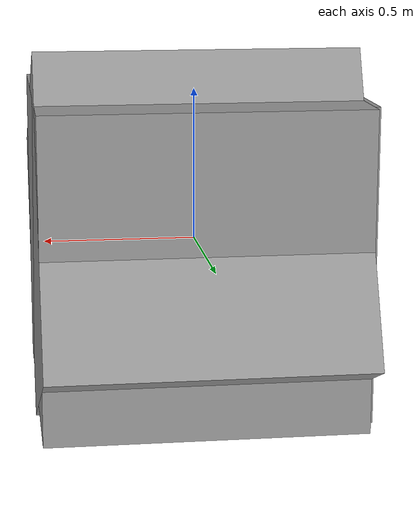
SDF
<sdf version='1.4'>
  <model name='test_converter'>
    <link name='link_slot1'>
      <pose>0 0 0 0 -0 0</pose>
      <inertial>
        <pose>0 0 0 0 -0 0</pose>
        <mass>5</mass>
        <inertia>
          <ixx>1</ixx>
          <ixy>0</ixy>
          <ixz>0</ixz>
          <iyy>1</iyy>
          <iyz>0</iyz>
          <izz>1</izz>
        </inertia>
      </inertial>
      <collision name='link_slot1_collision'>
        <pose>0 0 0 0 -0 0</pose>
        <geometry>
          <box>
            <size>1 1 1</size>
          </box>
        </geometry>
        <surface>
          <contact>
            <ode/>
          </contact>
          <friction>
            <ode/>
          </friction>
        </surface>
      </collision>
      <visual name='link_slot1_visual'>
        <pose>0 0 0 0 -0 0</pose>
        <geometry>
          <box>
            <size>1 1 1</size>
          </box>
        </geometry>
        <material>
          <script>
            <name>Gazebo/Grey</name>
            <uri>__default__</uri>
          </script>
        </material>
      </visual>
      <gravity>1</gravity>
      <velocity_decay>
        <linear>0</linear>
        <angular>0</angular>
      </velocity_decay>
      <self_collide>0</self_collide>
    </link>
    <link name='link_slot1_switch'>
      <pose>0.037 0.111 0.005 0.419 -0 0</pose>
      <inertial>
        <pose>0 0 0 0 -0 0</pose>
        <mass>5</mass>
        <inertia>
          <ixx>1</ixx>
          <ixy>0</ixy>
          <ixz>0</ixz>
          <iyy>1</iyy>
          <iyz>0</iyz>
          <izz>1</izz>
        </inertia>
      </inertial>
      <collision name='link_slot1_switch_collision'>
        <pose>0 0 0 0 -0 0</pose>
        <geometry>
          <box>
            <size>1 1 1</size>
          </box>
        </geometry>
        <surface>
          <contact>
            <ode/>
          </contact>
          <friction>
            <ode/>
          </friction>
        </surface>
      </collision>
      <visual name='link_slot1_switch_visual'>
        <pose>0 0 0 0 -0 0</pose>
        <geometry>
          <box>
            <size>1 1 1</size>
          </box>
        </geometry>
        <material>
          <script>
            <name>Gazebo/Grey</name>
            <uri>__default__</uri>
          </script>
        </material>
        <material>
          <script>
            <name>Gazebo/Black</name>
            <uri>__default__</uri>
          </script>
        </material>
      </visual>
      <gravity>1</gravity>
      <velocity_decay>
        <linear>0</linear>
        <angular>0</angular>
      </velocity_decay>
      <self_collide>0</self_collide>
    </link>
    <joint name='link_slot1/link_slot1_switch' type='revolute'>
      <child>link_slot1_switch</child>
      <parent>link_slot1</parent>
      <axis>
        <xyz>1 0 0</xyz>
        <limit>
          <lower>-0.84</lower>
          <upper>0</upper>
          <effort>1e+07</effort>
          <velocity>1000</velocity>
        </limit>
        <dynamics/>
      </axis>
    </joint>
    <link name='link_slot1_switch_cover'>
      <pose>0.037 0.124 0.011 0 -0 0</pose>
      <inertial>
        <pose>0 0 0 0 -0 0</pose>
        <mass>5</mass>
        <inertia>
          <ixx>1</ixx>
          <ixy>0</ixy>
          <ixz>0</ixz>
          <iyy>1</iyy>
          <iyz>0</iyz>
          <izz>1</izz>
        </inertia>
      </inertial>
      <collision name='link_slot1_switch_cover_collision'>
        <pose>0 0 0 0 -0 0</pose>
        <geometry>
          <box>
            <size>1 1 1</size>
          </box>
        </geometry>
        <surface>
          <contact>
            <ode/>
          </contact>
          <friction>
            <ode/>
          </friction>
        </surface>
      </collision>
      <visual name='link_slot1_switch_cover_visual'>
        <pose>0 0 0 0 -0 0</pose>
        <geometry>
          <box>
            <size>1 1 1</size>
          </box>
        </geometry>
        <material>
          <script>
            <name>Gazebo/Grey</name>
            <uri>__default__</uri>
          </script>
        </material>
        <material>
          <script>
            <name>Gazebo/Black</name>
            <uri>__default__</uri>
          </script>
        </material>
        <material>
          <script>
            <name>Gazebo/Red</name>
            <uri>__default__</uri>
          </script>
        </material>
      </visual>
      <gravity>1</gravity>
      <velocity_decay>
        <linear>0</linear>
        <angular>0</angular>
      </velocity_decay>
      <self_collide>0</self_collide>
    </link>
    <joint name='link_slot1/link_slot1_switch_cover' type='revolute'>
      <child>link_slot1_switch_cover</child>
      <parent>link_slot1</parent>
      <axis>
        <xyz>1 0 0</xyz>
        <limit>
          <lower>-1.57</lower>
          <upper>0</upper>
          <effort>1e+07</effort>
          <velocity>1000</velocity>
        </limit>
        <dynamics/>
      </axis>
    </joint>
  </model>
</sdf>
